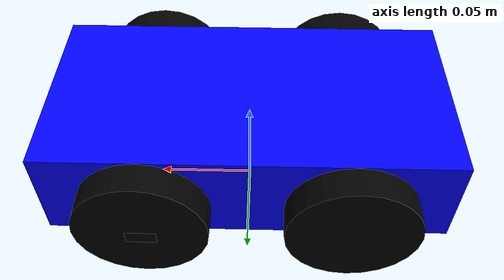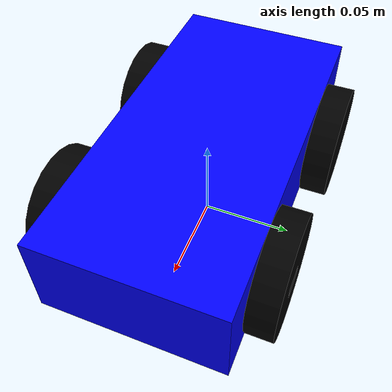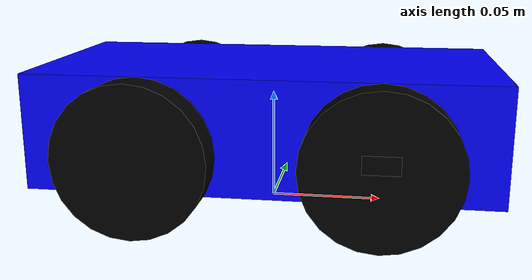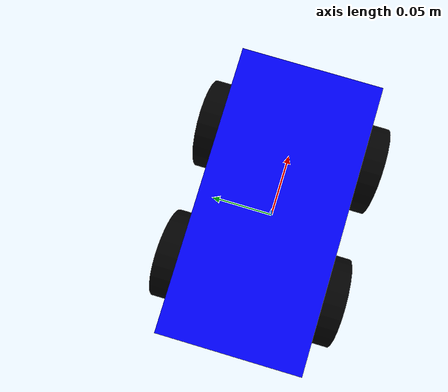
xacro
<!--
    使用 xacro 优化 URDF 版的小车底盘实现：

    实现思路:
    1.将一些常量、变量封装为 xacro:property
      比如:PI 值、小车底盘半径、离地间距、车轮半径、宽度 ....
    2.使用 宏 封装驱动轮以及支撑轮实现，调用相关宏生成驱动轮与支撑轮

-->
<!-- 根标签，必须声明 xmlns:xacro -->
<robot name="my_base" xmlns:xacro="http://www.ros.org/wiki/xacro">
    <!-- 封装变量、常量 -->
    <xacro:property name="PI" value="3.141"/>
    <!-- 宏:黑色设置 -->
    <material name="black">
        <color rgba="0.0 0.0 0.0 1.0" />
    </material>
    <!-- 底盘属性 -->
    <xacro:property name="base_footprint_radius" value="0.001" /> <!-- base_footprint 半径  -->
    <xacro:property name="base_link_length" value="0.2" /> <!-- base_link 长 -->
    <xacro:property name="base_link_width" value="0.1" /> <!-- base_link 宽-->
    <xacro:property name="base_link_height" value="0.05" /> <!-- base_link高 -->
    <xacro:property name="earth_space" value="0.015" /> <!-- 离地间距 -->

    <!-- 底盘 -->
    <link name="base_footprint">
      <visual>
        <geometry>
          <sphere radius="${base_footprint_radius}" />
        </geometry>
      </visual>
    </link>

    <link name="base_link">
      <visual>
        <geometry>
          <box size="${base_link_length} ${base_link_width} ${base_link_height}"/>
        </geometry>
        <origin xyz="0 0 0" rpy="0 0 0" />
        <material name="blue">
          <color rgba="0.0 0.0 1.0 0.9" />
        </material>
      </visual>
    </link>

    <joint name="base_link2base_footprint" type="fixed">
      <parent link="base_footprint" />
      <child link="base_link" />
      <origin xyz="0 0 ${earth_space + base_link_height / 2 }" />
    </joint>

  <!-- 后轮：驱动轮（不转向） -->
  <xacro:property name="wheel_radius" value="0.0325" /><!-- 半径 -->
  <xacro:property name="wheel_length" value="0.015" /><!-- 宽度 -->
    <!-- 驱动轮宏实现 -->
    <xacro:macro name="add_drive_wheels" params="name flag">
      <link name="${name}_wheel">
        <visual>
          <geometry>
            <cylinder radius="${wheel_radius}" length="${wheel_length}" />
          </geometry>
          <origin xyz="0.0 0.0 0.0" rpy="${PI / 2} 0.0 0.0" />
          <material name="black" />
        </visual>
      </link>

      <joint name="${name}_wheel2base_link" type="continuous">
        <parent link="base_link" />
        <child link="${name}_wheel" />
        <origin xyz="-0.05 ${flag * (base_link_width/2+wheel_length/2)} ${-(earth_space + base_link_height  / 2 - wheel_radius) }" />
        <axis xyz="0 1 0" />
      </joint>
    </xacro:macro>
  <xacro:add_drive_wheels name="left_back" flag="1" />
  <xacro:add_drive_wheels name="right_back" flag="-1" />

  <!-- 前轮(转向轮) -->
  <xacro:property name="wheel_radius" value="0.0325" /><!-- 半径 -->
  <xacro:property name="wheel_length" value="0.015" /><!-- 宽度 -->
    <!-- 转向轮宏实现 -->
    <xacro:macro name="add_steer_wheels" params="name flag">
    <link name="${name}_steer">
        <visual>
          <geometry>
            <box size="0.015 0.015 0.015" />
          </geometry>
          <material name="black" />
        </visual>
    </link>
   <!-- 2. 转向关节（绕z轴） -->
   <joint name="${name}_steer_joint" type="revolute">
     <parent link="base_link"/>
     <child link="${name}_steer"/>
     <origin xyz="0.05 ${flag * (base_link_width/2+wheel_length/2)} ${-(earth_space + base_link_height/2 - wheel_radius)}" />
     <axis xyz="0 0 1"/>
     <limit lower="-0.785" upper="0.785" effort="50" velocity="1.0"/>
   </joint>

      <link name="${name}_wheel">
        <visual>
          <geometry>
            <cylinder radius="${wheel_radius}" length="${wheel_length}" />
          </geometry>
          <origin xyz="0.0 0.0 0.0" rpy="${PI / 2} 0.0 0.0" />
          <material name="black" />
        </visual>
      </link>

      <!-- 旋转(y轴) -->
      <joint name="${name}_wheel2base_link" type="continuous">
        <parent link="${name}_steer" />
        <child link="${name}_wheel" />
        <origin xyz="0 0 0" rpy="0 0 0" />
        <axis xyz="0 1 0" />
      </joint>
    </xacro:macro>
  <xacro:add_steer_wheels name="left_front" flag="1" />
  <xacro:add_steer_wheels name="right_front" flag="-1" />

</robot>
